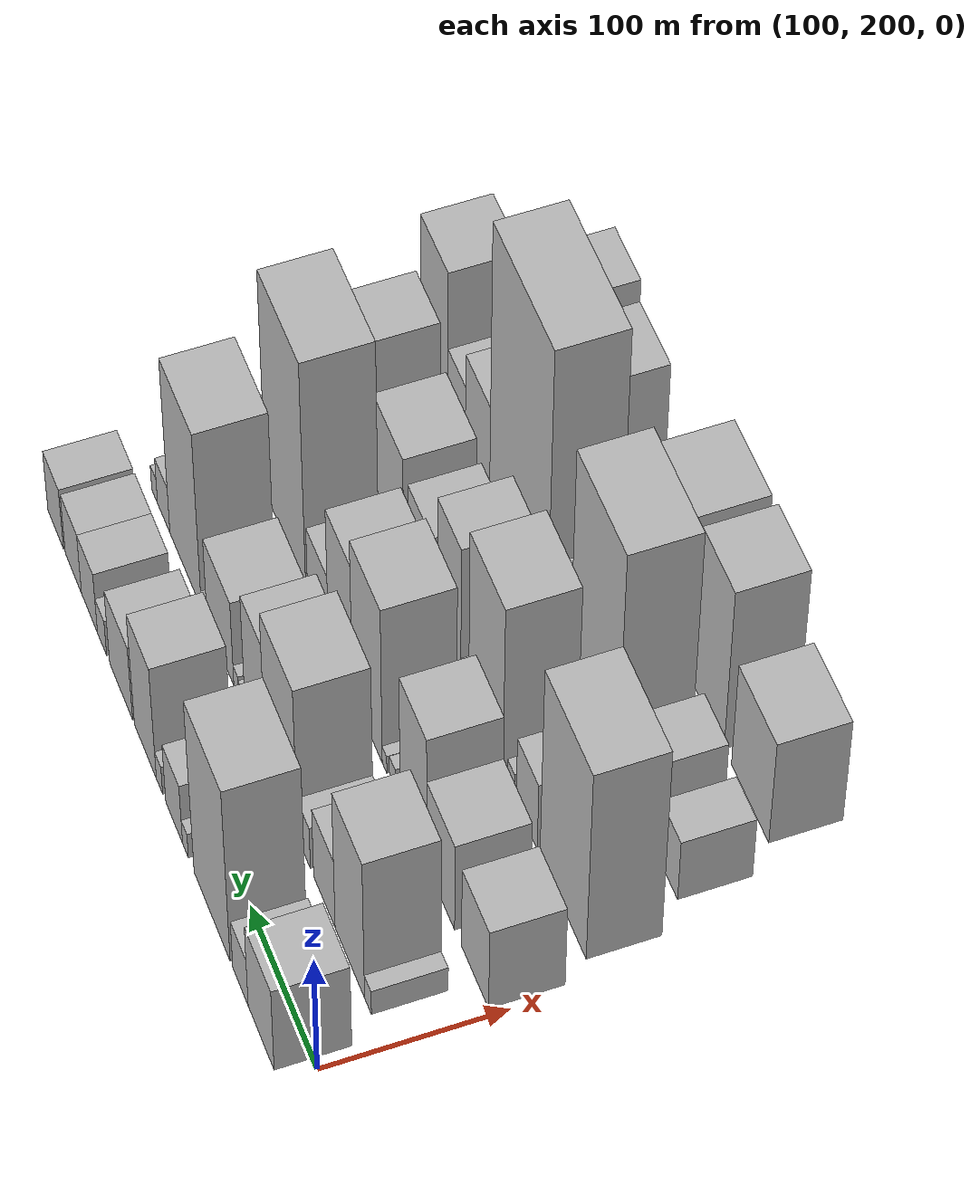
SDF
<sdf version="1.6">
 <world name="default">
  <model name="building_32">
   <static>1</static>
   <pose>100.0000 226.2033 0 0.000000 0.000000 0.000000</pose>
   <link name="link">
    <pose>0 0 36.00 0 0 0</pose>
    <collision name="collision"><geometry><box><size>40.0000 38.8495 72.0000</size></box></geometry></collision>
    <visual name="visual">
     <cast_shadows>0</cast_shadows>
     <geometry><box><size>40.0000 38.8495 72.0000</size></box></geometry>
     <material>
      <script>
       <uri>model://HANNAS_wall/materials/scripts</uri>
       <uri>model://HANNAS_wall/materials/textures</uri>
       <name>vrc/HANNAS_wall</name>
      </script>
     </material>
    </visual>
   </link>
  </model>
  <model name="building_33">
   <static>1</static>
   <pose>100.0000 257.3364 0 0.000000 0.000000 0.000000</pose>
   <link name="link">
    <pose>0 0 21.00 0 0 0</pose>
    <collision name="collision"><geometry><box><size>40.0000 23.4166 42.0000</size></box></geometry></collision>
    <visual name="visual">
     <cast_shadows>0</cast_shadows>
     <geometry><box><size>40.0000 23.4166 42.0000</size></box></geometry>
     <material>
      <script>
       <uri>model://HANNAS_wall/materials/scripts</uri>
       <uri>model://HANNAS_wall/materials/textures</uri>
       <name>vrc/HANNAS_wall</name>
      </script>
     </material>
    </visual>
   </link>
  </model>
  <model name="building_34">
   <static>1</static>
   <pose>100.0000 300.7653 0 0.000000 0.000000 0.000000</pose>
   <link name="link">
    <pose>0 0 75.00 0 0 0</pose>
    <collision name="collision"><geometry><box><size>40.0000 55.4412 150.0000</size></box></geometry></collision>
    <visual name="visual">
     <cast_shadows>0</cast_shadows>
     <geometry><box><size>40.0000 55.4412 150.0000</size></box></geometry>
     <material>
      <script>
       <uri>model://HANNAS_wall/materials/scripts</uri>
       <uri>model://HANNAS_wall/materials/textures</uri>
       <name>vrc/HANNAS_wall</name>
      </script>
     </material>
    </visual>
   </link>
  </model>
  <model name="building_35">
   <static>1</static>
   <pose>100.0000 342.0598 0 0.000000 0.000000 0.000000</pose>
   <link name="link">
    <pose>0 0 10.50 0 0 0</pose>
    <collision name="collision"><geometry><box><size>40.0000 9.1478 21.0000</size></box></geometry></collision>
    <visual name="visual">
     <cast_shadows>0</cast_shadows>
     <geometry><box><size>40.0000 9.1478 21.0000</size></box></geometry>
     <material>
      <script>
       <uri>model://HANNAS_wall/materials/scripts</uri>
       <uri>model://HANNAS_wall/materials/textures</uri>
       <name>vrc/HANNAS_wall</name>
      </script>
     </material>
    </visual>
   </link>
  </model>
  <model name="building_36">
   <static>1</static>
   <pose>100.0000 359.8255 0 0.000000 0.000000 0.000000</pose>
   <link name="link">
    <pose>0 0 25.50 0 0 0</pose>
    <collision name="collision"><geometry><box><size>40.0000 26.3837 51.0000</size></box></geometry></collision>
    <visual name="visual">
     <cast_shadows>0</cast_shadows>
     <geometry><box><size>40.0000 26.3837 51.0000</size></box></geometry>
     <material>
      <script>
       <uri>model://HANNAS_wall/materials/scripts</uri>
       <uri>model://HANNAS_wall/materials/textures</uri>
       <name>vrc/HANNAS_wall</name>
      </script>
     </material>
    </visual>
   </link>
  </model>
  <model name="building_37">
   <static>1</static>
   <pose>100.0000 383.0218 0 0.000000 0.000000 0.000000</pose>
   <link name="link">
    <pose>0 0 12.00 0 0 0</pose>
    <collision name="collision"><geometry><box><size>40.0000 10.0089 24.0000</size></box></geometry></collision>
    <visual name="visual">
     <cast_shadows>0</cast_shadows>
     <geometry><box><size>40.0000 10.0089 24.0000</size></box></geometry>
     <material>
      <script>
       <uri>model://HANNAS_wall/materials/scripts</uri>
       <uri>model://HANNAS_wall/materials/textures</uri>
       <name>vrc/HANNAS_wall</name>
      </script>
     </material>
    </visual>
   </link>
  </model>
  <model name="building_38">
   <static>1</static>
   <pose>100.0000 405.5838 0 0.000000 0.000000 0.000000</pose>
   <link name="link">
    <pose>0 0 48.00 0 0 0</pose>
    <collision name="collision"><geometry><box><size>40.0000 35.1152 96.0000</size></box></geometry></collision>
    <visual name="visual">
     <cast_shadows>0</cast_shadows>
     <geometry><box><size>40.0000 35.1152 96.0000</size></box></geometry>
     <material>
      <script>
       <uri>model://HANNAS_wall/materials/scripts</uri>
       <uri>model://HANNAS_wall/materials/textures</uri>
       <name>vrc/HANNAS_wall</name>
      </script>
     </material>
    </visual>
   </link>
  </model>
  <model name="building_39">
   <static>1</static>
   <pose>100.0000 444.8007 0 0.000000 0.000000 0.000000</pose>
   <link name="link">
    <pose>0 0 31.50 0 0 0</pose>
    <collision name="collision"><geometry><box><size>40.0000 37.3184 63.0000</size></box></geometry></collision>
    <visual name="visual">
     <cast_shadows>0</cast_shadows>
     <geometry><box><size>40.0000 37.3184 63.0000</size></box></geometry>
     <material>
      <script>
       <uri>model://HANNAS_wall/materials/scripts</uri>
       <uri>model://HANNAS_wall/materials/textures</uri>
       <name>vrc/HANNAS_wall</name>
      </script>
     </material>
    </visual>
   </link>
  </model>
  <model name="building_40">
   <static>1</static>
   <pose>100.0000 475.9964 0 0.000000 0.000000 0.000000</pose>
   <link name="link">
    <pose>0 0 15.00 0 0 0</pose>
    <collision name="collision"><geometry><box><size>40.0000 15.0731 30.0000</size></box></geometry></collision>
    <visual name="visual">
     <cast_shadows>0</cast_shadows>
     <geometry><box><size>40.0000 15.0731 30.0000</size></box></geometry>
     <material>
      <script>
       <uri>model://HANNAS_wall/materials/scripts</uri>
       <uri>model://HANNAS_wall/materials/textures</uri>
       <name>vrc/HANNAS_wall</name>
      </script>
     </material>
    </visual>
   </link>
  </model>
  <model name="building_41">
   <static>1</static>
   <pose>100.0000 496.7662 0 0.000000 0.000000 0.000000</pose>
   <link name="link">
    <pose>0 0 25.50 0 0 0</pose>
    <collision name="collision"><geometry><box><size>40.0000 26.4666 51.0000</size></box></geometry></collision>
    <visual name="visual">
     <cast_shadows>0</cast_shadows>
     <geometry><box><size>40.0000 26.4666 51.0000</size></box></geometry>
     <material>
      <script>
       <uri>model://HANNAS_wall/materials/scripts</uri>
       <uri>model://HANNAS_wall/materials/textures</uri>
       <name>vrc/HANNAS_wall</name>
      </script>
     </material>
    </visual>
   </link>
  </model>
  <model name="building_42">
   <static>1</static>
   <pose>100.0000 523.6251 0 0.000000 0.000000 0.000000</pose>
   <link name="link">
    <pose>0 0 25.50 0 0 0</pose>
    <collision name="collision"><geometry><box><size>40.0000 27.2512 51.0000</size></box></geometry></collision>
    <visual name="visual">
     <cast_shadows>0</cast_shadows>
     <geometry><box><size>40.0000 27.2512 51.0000</size></box></geometry>
     <material>
      <script>
       <uri>model://HANNAS_wall/materials/scripts</uri>
       <uri>model://HANNAS_wall/materials/textures</uri>
       <name>vrc/HANNAS_wall</name>
      </script>
     </material>
    </visual>
   </link>
  </model>
  <model name="building_43">
   <static>1</static>
   <pose>100.0000 553.4690 0 0.000000 0.000000 0.000000</pose>
   <link name="link">
    <pose>0 0 25.50 0 0 0</pose>
    <collision name="collision"><geometry><box><size>40.0000 26.4367 51.0000</size></box></geometry></collision>
    <visual name="visual">
     <cast_shadows>0</cast_shadows>
     <geometry><box><size>40.0000 26.4367 51.0000</size></box></geometry>
     <material>
      <script>
       <uri>model://HANNAS_wall/materials/scripts</uri>
       <uri>model://HANNAS_wall/materials/textures</uri>
       <name>vrc/HANNAS_wall</name>
      </script>
     </material>
    </visual>
   </link>
  </model>
  <model name="building_85">
   <static>1</static>
   <pose>155.0000 225.3614 0 0.000000 0.000000 0.000000</pose>
   <link name="link">
    <pose>0 0 10.50 0 0 0</pose>
    <collision name="collision"><geometry><box><size>40.0000 10.0350 21.0000</size></box></geometry></collision>
    <visual name="visual">
     <cast_shadows>0</cast_shadows>
     <geometry><box><size>40.0000 10.0350 21.0000</size></box></geometry>
     <material>
      <script>
       <uri>model://HANNAS_wall/materials/scripts</uri>
       <uri>model://HANNAS_wall/materials/textures</uri>
       <name>vrc/HANNAS_wall</name>
      </script>
     </material>
    </visual>
   </link>
  </model>
  <model name="building_86">
   <static>1</static>
   <pose>155.0000 251.9988 0 0.000000 0.000000 0.000000</pose>
   <link name="link">
    <pose>0 0 60.00 0 0 0</pose>
    <collision name="collision"><geometry><box><size>40.0000 43.2398 120.0000</size></box></geometry></collision>
    <visual name="visual">
     <cast_shadows>0</cast_shadows>
     <geometry><box><size>40.0000 43.2398 120.0000</size></box></geometry>
     <material>
      <script>
       <uri>model://HANNAS_wall/materials/scripts</uri>
       <uri>model://HANNAS_wall/materials/textures</uri>
       <name>vrc/HANNAS_wall</name>
      </script>
     </material>
    </visual>
   </link>
  </model>
  <model name="building_87">
   <static>1</static>
   <pose>155.0000 289.6561 0 0.000000 0.000000 0.000000</pose>
   <link name="link">
    <pose>0 0 30.00 0 0 0</pose>
    <collision name="collision"><geometry><box><size>40.0000 32.0747 60.0000</size></box></geometry></collision>
    <visual name="visual">
     <cast_shadows>0</cast_shadows>
     <geometry><box><size>40.0000 32.0747 60.0000</size></box></geometry>
     <material>
      <script>
       <uri>model://HANNAS_wall/materials/scripts</uri>
       <uri>model://HANNAS_wall/materials/textures</uri>
       <name>vrc/HANNAS_wall</name>
      </script>
     </material>
    </visual>
   </link>
  </model>
  <model name="building_88">
   <static>1</static>
   <pose>155.0000 320.2543 0 0.000000 0.000000 0.000000</pose>
   <link name="link">
    <pose>0 0 18.00 0 0 0</pose>
    <collision name="collision"><geometry><box><size>40.0000 19.1218 36.0000</size></box></geometry></collision>
    <visual name="visual">
     <cast_shadows>0</cast_shadows>
     <geometry><box><size>40.0000 19.1218 36.0000</size></box></geometry>
     <material>
      <script>
       <uri>model://HANNAS_wall/materials/scripts</uri>
       <uri>model://HANNAS_wall/materials/textures</uri>
       <name>vrc/HANNAS_wall</name>
      </script>
     </material>
    </visual>
   </link>
  </model>
  <model name="building_89">
   <static>1</static>
   <pose>155.0000 354.3332 0 0.000000 0.000000 0.000000</pose>
   <link name="link">
    <pose>0 0 64.50 0 0 0</pose>
    <collision name="collision"><geometry><box><size>40.0000 49.0359 129.0000</size></box></geometry></collision>
    <visual name="visual">
     <cast_shadows>0</cast_shadows>
     <geometry><box><size>40.0000 49.0359 129.0000</size></box></geometry>
     <material>
      <script>
       <uri>model://HANNAS_wall/materials/scripts</uri>
       <uri>model://HANNAS_wall/materials/textures</uri>
       <name>vrc/HANNAS_wall</name>
      </script>
     </material>
    </visual>
   </link>
  </model>
  <model name="building_90">
   <static>1</static>
   <pose>155.0000 394.6237 0 0.000000 0.000000 0.000000</pose>
   <link name="link">
    <pose>0 0 51.00 0 0 0</pose>
    <collision name="collision"><geometry><box><size>40.0000 31.5451 102.0000</size></box></geometry></collision>
    <visual name="visual">
     <cast_shadows>0</cast_shadows>
     <geometry><box><size>40.0000 31.5451 102.0000</size></box></geometry>
     <material>
      <script>
       <uri>model://HANNAS_wall/materials/scripts</uri>
       <uri>model://HANNAS_wall/materials/textures</uri>
       <name>vrc/HANNAS_wall</name>
      </script>
     </material>
    </visual>
   </link>
  </model>
  <model name="building_91">
   <static>1</static>
   <pose>155.0000 417.5722 0 0.000000 0.000000 0.000000</pose>
   <link name="link">
    <pose>0 0 7.50 0 0 0</pose>
    <collision name="collision"><geometry><box><size>40.0000 6.3520 15.0000</size></box></geometry></collision>
    <visual name="visual">
     <cast_shadows>0</cast_shadows>
     <geometry><box><size>40.0000 6.3520 15.0000</size></box></geometry>
     <material>
      <script>
       <uri>model://HANNAS_wall/materials/scripts</uri>
       <uri>model://HANNAS_wall/materials/textures</uri>
       <name>vrc/HANNAS_wall</name>
      </script>
     </material>
    </visual>
   </link>
  </model>
  <model name="building_92">
   <static>1</static>
   <pose>155.0000 424.6113 0 0.000000 0.000000 0.000000</pose>
   <link name="link">
    <pose>0 0 9.00 0 0 0</pose>
    <collision name="collision"><geometry><box><size>40.0000 7.7261 18.0000</size></box></geometry></collision>
    <visual name="visual">
     <cast_shadows>0</cast_shadows>
     <geometry><box><size>40.0000 7.7261 18.0000</size></box></geometry>
     <material>
      <script>
       <uri>model://HANNAS_wall/materials/scripts</uri>
       <uri>model://HANNAS_wall/materials/textures</uri>
       <name>vrc/HANNAS_wall</name>
      </script>
     </material>
    </visual>
   </link>
  </model>
  <model name="building_93">
   <static>1</static>
   <pose>155.0000 449.6733 0 0.000000 0.000000 0.000000</pose>
   <link name="link">
    <pose>0 0 36.00 0 0 0</pose>
    <collision name="collision"><geometry><box><size>40.0000 42.3980 72.0000</size></box></geometry></collision>
    <visual name="visual">
     <cast_shadows>0</cast_shadows>
     <geometry><box><size>40.0000 42.3980 72.0000</size></box></geometry>
     <material>
      <script>
       <uri>model://HANNAS_wall/materials/scripts</uri>
       <uri>model://HANNAS_wall/materials/textures</uri>
       <name>vrc/HANNAS_wall</name>
      </script>
     </material>
    </visual>
   </link>
  </model>
  <model name="building_94">
   <static>1</static>
   <pose>155.0000 477.0227 0 0.000000 0.000000 0.000000</pose>
   <link name="link">
    <pose>0 0 7.50 0 0 0</pose>
    <collision name="collision"><geometry><box><size>40.0000 6.3008 15.0000</size></box></geometry></collision>
    <visual name="visual">
     <cast_shadows>0</cast_shadows>
     <geometry><box><size>40.0000 6.3008 15.0000</size></box></geometry>
     <material>
      <script>
       <uri>model://HANNAS_wall/materials/scripts</uri>
       <uri>model://HANNAS_wall/materials/textures</uri>
       <name>vrc/HANNAS_wall</name>
      </script>
     </material>
    </visual>
   </link>
  </model>
  <model name="building_95">
   <static>1</static>
   <pose>155.0000 505.6704 0 0.000000 0.000000 0.000000</pose>
   <link name="link">
    <pose>0 0 73.50 0 0 0</pose>
    <collision name="collision"><geometry><box><size>40.0000 50.9947 147.0000</size></box></geometry></collision>
    <visual name="visual">
     <cast_shadows>0</cast_shadows>
     <geometry><box><size>40.0000 50.9947 147.0000</size></box></geometry>
     <material>
      <script>
       <uri>model://HANNAS_wall/materials/scripts</uri>
       <uri>model://HANNAS_wall/materials/textures</uri>
       <name>vrc/HANNAS_wall</name>
      </script>
     </material>
    </visual>
   </link>
  </model>
  <model name="building_96">
   <static>1</static>
   <pose>155.0000 541.3744 0 0.000000 0.000000 0.000000</pose>
   <link name="link">
    <pose>0 0 19.50 0 0 0</pose>
    <collision name="collision"><geometry><box><size>40.0000 20.4133 39.0000</size></box></geometry></collision>
    <visual name="visual">
     <cast_shadows>0</cast_shadows>
     <geometry><box><size>40.0000 20.4133 39.0000</size></box></geometry>
     <material>
      <script>
       <uri>model://HANNAS_wall/materials/scripts</uri>
       <uri>model://HANNAS_wall/materials/textures</uri>
       <name>vrc/HANNAS_wall</name>
      </script>
     </material>
    </visual>
   </link>
  </model>
  <model name="building_97">
   <static>1</static>
   <pose>155.0000 556.3083 0 0.000000 0.000000 0.000000</pose>
   <link name="link">
    <pose>0 0 10.50 0 0 0</pose>
    <collision name="collision"><geometry><box><size>40.0000 9.4545 21.0000</size></box></geometry></collision>
    <visual name="visual">
     <cast_shadows>0</cast_shadows>
     <geometry><box><size>40.0000 9.4545 21.0000</size></box></geometry>
     <material>
      <script>
       <uri>model://HANNAS_wall/materials/scripts</uri>
       <uri>model://HANNAS_wall/materials/textures</uri>
       <name>vrc/HANNAS_wall</name>
      </script>
     </material>
    </visual>
   </link>
  </model>
  <model name="building_139">
   <static>1</static>
   <pose>210.0000 223.0183 0 0.000000 0.000000 0.000000</pose>
   <link name="link">
    <pose>0 0 34.50 0 0 0</pose>
    <collision name="collision"><geometry><box><size>40.0000 38.3689 69.0000</size></box></geometry></collision>
    <visual name="visual">
     <cast_shadows>0</cast_shadows>
     <geometry><box><size>40.0000 38.3689 69.0000</size></box></geometry>
     <material>
      <script>
       <uri>model://HANNAS_wall/materials/scripts</uri>
       <uri>model://HANNAS_wall/materials/textures</uri>
       <name>vrc/HANNAS_wall</name>
      </script>
     </material>
    </visual>
   </link>
  </model>
  <model name="building_140">
   <static>1</static>
   <pose>210.0000 272.2352 0 0.000000 0.000000 0.000000</pose>
   <link name="link">
    <pose>0 0 37.50 0 0 0</pose>
    <collision name="collision"><geometry><box><size>40.0000 40.0648 75.0000</size></box></geometry></collision>
    <visual name="visual">
     <cast_shadows>0</cast_shadows>
     <geometry><box><size>40.0000 40.0648 75.0000</size></box></geometry>
     <material>
      <script>
       <uri>model://HANNAS_wall/materials/scripts</uri>
       <uri>model://HANNAS_wall/materials/textures</uri>
       <name>vrc/HANNAS_wall</name>
      </script>
     </material>
    </visual>
   </link>
  </model>
  <model name="building_141">
   <static>1</static>
   <pose>210.0000 311.9133 0 0.000000 0.000000 0.000000</pose>
   <link name="link">
    <pose>0 0 55.50 0 0 0</pose>
    <collision name="collision"><geometry><box><size>40.0000 39.2915 111.0000</size></box></geometry></collision>
    <visual name="visual">
     <cast_shadows>0</cast_shadows>
     <geometry><box><size>40.0000 39.2915 111.0000</size></box></geometry>
     <material>
      <script>
       <uri>model://HANNAS_wall/materials/scripts</uri>
       <uri>model://HANNAS_wall/materials/textures</uri>
       <name>vrc/HANNAS_wall</name>
      </script>
     </material>
    </visual>
   </link>
  </model>
  <model name="building_142">
   <static>1</static>
   <pose>210.0000 342.9274 0 0.000000 0.000000 0.000000</pose>
   <link name="link">
    <pose>0 0 10.50 0 0 0</pose>
    <collision name="collision"><geometry><box><size>40.0000 8.7366 21.0000</size></box></geometry></collision>
    <visual name="visual">
     <cast_shadows>0</cast_shadows>
     <geometry><box><size>40.0000 8.7366 21.0000</size></box></geometry>
     <material>
      <script>
       <uri>model://HANNAS_wall/materials/scripts</uri>
       <uri>model://HANNAS_wall/materials/textures</uri>
       <name>vrc/HANNAS_wall</name>
      </script>
     </material>
    </visual>
   </link>
  </model>
  <model name="building_143">
   <static>1</static>
   <pose>210.0000 354.7380 0 0.000000 0.000000 0.000000</pose>
   <link name="link">
    <pose>0 0 7.50 0 0 0</pose>
    <collision name="collision"><geometry><box><size>40.0000 6.8846 15.0000</size></box></geometry></collision>
    <visual name="visual">
     <cast_shadows>0</cast_shadows>
     <geometry><box><size>40.0000 6.8846 15.0000</size></box></geometry>
     <material>
      <script>
       <uri>model://HANNAS_wall/materials/scripts</uri>
       <uri>model://HANNAS_wall/materials/textures</uri>
       <name>vrc/HANNAS_wall</name>
      </script>
     </material>
    </visual>
   </link>
  </model>
  <model name="building_144">
   <static>1</static>
   <pose>210.0000 380.5966 0 0.000000 0.000000 0.000000</pose>
   <link name="link">
    <pose>0 0 66.00 0 0 0</pose>
    <collision name="collision"><geometry><box><size>40.0000 44.8326 132.0000</size></box></geometry></collision>
    <visual name="visual">
     <cast_shadows>0</cast_shadows>
     <geometry><box><size>40.0000 44.8326 132.0000</size></box></geometry>
     <material>
      <script>
       <uri>model://HANNAS_wall/materials/scripts</uri>
       <uri>model://HANNAS_wall/materials/textures</uri>
       <name>vrc/HANNAS_wall</name>
      </script>
     </material>
    </visual>
   </link>
  </model>
  <model name="building_145">
   <static>1</static>
   <pose>210.0000 421.4121 0 0.000000 0.000000 0.000000</pose>
   <link name="link">
    <pose>0 0 55.50 0 0 0</pose>
    <collision name="collision"><geometry><box><size>40.0000 36.7985 111.0000</size></box></geometry></collision>
    <visual name="visual">
     <cast_shadows>0</cast_shadows>
     <geometry><box><size>40.0000 36.7985 111.0000</size></box></geometry>
     <material>
      <script>
       <uri>model://HANNAS_wall/materials/scripts</uri>
       <uri>model://HANNAS_wall/materials/textures</uri>
       <name>vrc/HANNAS_wall</name>
      </script>
     </material>
    </visual>
   </link>
  </model>
  <model name="building_146">
   <static>1</static>
   <pose>210.0000 456.0001 0 0.000000 0.000000 0.000000</pose>
   <link name="link">
    <pose>0 0 27.00 0 0 0</pose>
    <collision name="collision"><geometry><box><size>40.0000 32.3775 54.0000</size></box></geometry></collision>
    <visual name="visual">
     <cast_shadows>0</cast_shadows>
     <geometry><box><size>40.0000 32.3775 54.0000</size></box></geometry>
     <material>
      <script>
       <uri>model://HANNAS_wall/materials/scripts</uri>
       <uri>model://HANNAS_wall/materials/textures</uri>
       <name>vrc/HANNAS_wall</name>
      </script>
     </material>
    </visual>
   </link>
  </model>
  <model name="building_147">
   <static>1</static>
   <pose>210.0000 506.4985 0 0.000000 0.000000 0.000000</pose>
   <link name="link">
    <pose>0 0 93.00 0 0 0</pose>
    <collision name="collision"><geometry><box><size>40.0000 62.6194 186.0000</size></box></geometry></collision>
    <visual name="visual">
     <cast_shadows>0</cast_shadows>
     <geometry><box><size>40.0000 62.6194 186.0000</size></box></geometry>
     <material>
      <script>
       <uri>model://HANNAS_wall/materials/scripts</uri>
       <uri>model://HANNAS_wall/materials/textures</uri>
       <name>vrc/HANNAS_wall</name>
      </script>
     </material>
    </visual>
   </link>
  </model>
  <model name="building_148">
   <static>1</static>
   <pose>210.0000 551.4992 0 0.000000 0.000000 0.000000</pose>
   <link name="link">
    <pose>0 0 24.00 0 0 0</pose>
    <collision name="collision"><geometry><box><size>40.0000 27.3821 48.0000</size></box></geometry></collision>
    <visual name="visual">
     <cast_shadows>0</cast_shadows>
     <geometry><box><size>40.0000 27.3821 48.0000</size></box></geometry>
     <material>
      <script>
       <uri>model://HANNAS_wall/materials/scripts</uri>
       <uri>model://HANNAS_wall/materials/textures</uri>
       <name>vrc/HANNAS_wall</name>
      </script>
     </material>
    </visual>
   </link>
  </model>
  <model name="building_191">
   <static>1</static>
   <pose>265.0000 246.3530 0 0.000000 0.000000 0.000000</pose>
   <link name="link">
    <pose>0 0 81.00 0 0 0</pose>
    <collision name="collision"><geometry><box><size>40.0000 64.4665 162.0000</size></box></geometry></collision>
    <visual name="visual">
     <cast_shadows>0</cast_shadows>
     <geometry><box><size>40.0000 64.4665 162.0000</size></box></geometry>
     <material>
      <script>
       <uri>model://HANNAS_wall/materials/scripts</uri>
       <uri>model://HANNAS_wall/materials/textures</uri>
       <name>vrc/HANNAS_wall</name>
      </script>
     </material>
    </visual>
   </link>
  </model>
  <model name="building_192">
   <static>1</static>
   <pose>265.0000 297.5027 0 0.000000 0.000000 0.000000</pose>
   <link name="link">
    <pose>0 0 28.50 0 0 0</pose>
    <collision name="collision"><geometry><box><size>40.0000 29.8330 57.0000</size></box></geometry></collision>
    <visual name="visual">
     <cast_shadows>0</cast_shadows>
     <geometry><box><size>40.0000 29.8330 57.0000</size></box></geometry>
     <material>
      <script>
       <uri>model://HANNAS_wall/materials/scripts</uri>
       <uri>model://HANNAS_wall/materials/textures</uri>
       <name>vrc/HANNAS_wall</name>
      </script>
     </material>
    </visual>
   </link>
  </model>
  <model name="building_193">
   <static>1</static>
   <pose>265.0000 320.4722 0 0.000000 0.000000 0.000000</pose>
   <link name="link">
    <pose>0 0 10.50 0 0 0</pose>
    <collision name="collision"><geometry><box><size>40.0000 10.1061 21.0000</size></box></geometry></collision>
    <visual name="visual">
     <cast_shadows>0</cast_shadows>
     <geometry><box><size>40.0000 10.1061 21.0000</size></box></geometry>
     <material>
      <script>
       <uri>model://HANNAS_wall/materials/scripts</uri>
       <uri>model://HANNAS_wall/materials/textures</uri>
       <name>vrc/HANNAS_wall</name>
      </script>
     </material>
    </visual>
   </link>
  </model>
  <model name="building_194">
   <static>1</static>
   <pose>265.0000 356.4349 0 0.000000 0.000000 0.000000</pose>
   <link name="link">
    <pose>0 0 70.50 0 0 0</pose>
    <collision name="collision"><geometry><box><size>40.0000 49.8191 141.0000</size></box></geometry></collision>
    <visual name="visual">
     <cast_shadows>0</cast_shadows>
     <geometry><box><size>40.0000 49.8191 141.0000</size></box></geometry>
     <material>
      <script>
       <uri>model://HANNAS_wall/materials/scripts</uri>
       <uri>model://HANNAS_wall/materials/textures</uri>
       <name>vrc/HANNAS_wall</name>
      </script>
     </material>
    </visual>
   </link>
  </model>
  <model name="building_195">
   <static>1</static>
   <pose>265.0000 388.7556 0 0.000000 0.000000 0.000000</pose>
   <link name="link">
    <pose>0 0 9.00 0 0 0</pose>
    <collision name="collision"><geometry><box><size>40.0000 8.8224 18.0000</size></box></geometry></collision>
    <visual name="visual">
     <cast_shadows>0</cast_shadows>
     <geometry><box><size>40.0000 8.8224 18.0000</size></box></geometry>
     <material>
      <script>
       <uri>model://HANNAS_wall/materials/scripts</uri>
       <uri>model://HANNAS_wall/materials/textures</uri>
       <name>vrc/HANNAS_wall</name>
      </script>
     </material>
    </visual>
   </link>
  </model>
  <model name="building_196">
   <static>1</static>
   <pose>265.0000 410.3271 0 0.000000 0.000000 0.000000</pose>
   <link name="link">
    <pose>0 0 55.50 0 0 0</pose>
    <collision name="collision"><geometry><box><size>40.0000 34.3205 111.0000</size></box></geometry></collision>
    <visual name="visual">
     <cast_shadows>0</cast_shadows>
     <geometry><box><size>40.0000 34.3205 111.0000</size></box></geometry>
     <material>
      <script>
       <uri>model://HANNAS_wall/materials/scripts</uri>
       <uri>model://HANNAS_wall/materials/textures</uri>
       <name>vrc/HANNAS_wall</name>
      </script>
     </material>
    </visual>
   </link>
  </model>
  <model name="building_197">
   <static>1</static>
   <pose>265.0000 453.7393 0 0.000000 0.000000 0.000000</pose>
   <link name="link">
    <pose>0 0 33.00 0 0 0</pose>
    <collision name="collision"><geometry><box><size>40.0000 36.5038 66.0000</size></box></geometry></collision>
    <visual name="visual">
     <cast_shadows>0</cast_shadows>
     <geometry><box><size>40.0000 36.5038 66.0000</size></box></geometry>
     <material>
      <script>
       <uri>model://HANNAS_wall/materials/scripts</uri>
       <uri>model://HANNAS_wall/materials/textures</uri>
       <name>vrc/HANNAS_wall</name>
      </script>
     </material>
    </visual>
   </link>
  </model>
  <model name="building_198">
   <static>1</static>
   <pose>265.0000 501.6517 0 0.000000 0.000000 0.000000</pose>
   <link name="link">
    <pose>0 0 39.00 0 0 0</pose>
    <collision name="collision"><geometry><box><size>40.0000 45.3210 78.0000</size></box></geometry></collision>
    <visual name="visual">
     <cast_shadows>0</cast_shadows>
     <geometry><box><size>40.0000 45.3210 78.0000</size></box></geometry>
     <material>
      <script>
       <uri>model://HANNAS_wall/materials/scripts</uri>
       <uri>model://HANNAS_wall/materials/textures</uri>
       <name>vrc/HANNAS_wall</name>
      </script>
     </material>
    </visual>
   </link>
  </model>
  <model name="building_199">
   <static>1</static>
   <pose>265.0000 551.3649 0 0.000000 0.000000 0.000000</pose>
   <link name="link">
    <pose>0 0 54.00 0 0 0</pose>
    <collision name="collision"><geometry><box><size>40.0000 36.1055 108.0000</size></box></geometry></collision>
    <visual name="visual">
     <cast_shadows>0</cast_shadows>
     <geometry><box><size>40.0000 36.1055 108.0000</size></box></geometry>
     <material>
      <script>
       <uri>model://HANNAS_wall/materials/scripts</uri>
       <uri>model://HANNAS_wall/materials/textures</uri>
       <name>vrc/HANNAS_wall</name>
      </script>
     </material>
    </visual>
   </link>
  </model>
  <model name="building_200">
   <static>1</static>
   <pose>265.0000 579.7198 0 0.000000 0.000000 0.000000</pose>
   <link name="link">
    <pose>0 0 19.50 0 0 0</pose>
    <collision name="collision"><geometry><box><size>40.0000 20.6043 39.0000</size></box></geometry></collision>
    <visual name="visual">
     <cast_shadows>0</cast_shadows>
     <geometry><box><size>40.0000 20.6043 39.0000</size></box></geometry>
     <material>
      <script>
       <uri>model://HANNAS_wall/materials/scripts</uri>
       <uri>model://HANNAS_wall/materials/textures</uri>
       <name>vrc/HANNAS_wall</name>
      </script>
     </material>
    </visual>
   </link>
  </model>
  <model name="building_240">
   <static>1</static>
   <pose>320.0000 244.5699 0 0.000000 0.000000 0.000000</pose>
   <link name="link">
    <pose>0 0 25.50 0 0 0</pose>
    <collision name="collision"><geometry><box><size>40.0000 26.9902 51.0000</size></box></geometry></collision>
    <visual name="visual">
     <cast_shadows>0</cast_shadows>
     <geometry><box><size>40.0000 26.9902 51.0000</size></box></geometry>
     <material>
      <script>
       <uri>model://HANNAS_wall/materials/scripts</uri>
       <uri>model://HANNAS_wall/materials/textures</uri>
       <name>vrc/HANNAS_wall</name>
      </script>
     </material>
    </visual>
   </link>
  </model>
  <model name="building_241">
   <static>1</static>
   <pose>320.0000 262.4078 0 0.000000 0.000000 0.000000</pose>
   <link name="link">
    <pose>0 0 10.50 0 0 0</pose>
    <collision name="collision"><geometry><box><size>40.0000 8.6855 21.0000</size></box></geometry></collision>
    <visual name="visual">
     <cast_shadows>0</cast_shadows>
     <geometry><box><size>40.0000 8.6855 21.0000</size></box></geometry>
     <material>
      <script>
       <uri>model://HANNAS_wall/materials/scripts</uri>
       <uri>model://HANNAS_wall/materials/textures</uri>
       <name>vrc/HANNAS_wall</name>
      </script>
     </material>
    </visual>
   </link>
  </model>
  <model name="building_242">
   <static>1</static>
   <pose>320.0000 286.0915 0 0.000000 0.000000 0.000000</pose>
   <link name="link">
    <pose>0 0 31.50 0 0 0</pose>
    <collision name="collision"><geometry><box><size>40.0000 32.6820 63.0000</size></box></geometry></collision>
    <visual name="visual">
     <cast_shadows>0</cast_shadows>
     <geometry><box><size>40.0000 32.6820 63.0000</size></box></geometry>
     <material>
      <script>
       <uri>model://HANNAS_wall/materials/scripts</uri>
       <uri>model://HANNAS_wall/materials/textures</uri>
       <name>vrc/HANNAS_wall</name>
      </script>
     </material>
    </visual>
   </link>
  </model>
  <model name="building_243">
   <static>1</static>
   <pose>320.0000 308.0861 0 0.000000 0.000000 0.000000</pose>
   <link name="link">
    <pose>0 0 12.00 0 0 0</pose>
    <collision name="collision"><geometry><box><size>40.0000 11.3071 24.0000</size></box></geometry></collision>
    <visual name="visual">
     <cast_shadows>0</cast_shadows>
     <geometry><box><size>40.0000 11.3071 24.0000</size></box></geometry>
     <material>
      <script>
       <uri>model://HANNAS_wall/materials/scripts</uri>
       <uri>model://HANNAS_wall/materials/textures</uri>
       <name>vrc/HANNAS_wall</name>
      </script>
     </material>
    </visual>
   </link>
  </model>
  <model name="building_244">
   <static>1</static>
   <pose>320.0000 347.6069 0 0.000000 0.000000 0.000000</pose>
   <link name="link">
    <pose>0 0 91.50 0 0 0</pose>
    <collision name="collision"><geometry><box><size>40.0000 67.7346 183.0000</size></box></geometry></collision>
    <visual name="visual">
     <cast_shadows>0</cast_shadows>
     <geometry><box><size>40.0000 67.7346 183.0000</size></box></geometry>
     <material>
      <script>
       <uri>model://HANNAS_wall/materials/scripts</uri>
       <uri>model://HANNAS_wall/materials/textures</uri>
       <name>vrc/HANNAS_wall</name>
      </script>
     </material>
    </visual>
   </link>
  </model>
  <model name="building_245">
   <static>1</static>
   <pose>320.0000 395.9378 0 0.000000 0.000000 0.000000</pose>
   <link name="link">
    <pose>0 0 25.50 0 0 0</pose>
    <collision name="collision"><geometry><box><size>40.0000 28.9273 51.0000</size></box></geometry></collision>
    <visual name="visual">
     <cast_shadows>0</cast_shadows>
     <geometry><box><size>40.0000 28.9273 51.0000</size></box></geometry>
     <material>
      <script>
       <uri>model://HANNAS_wall/materials/scripts</uri>
       <uri>model://HANNAS_wall/materials/textures</uri>
       <name>vrc/HANNAS_wall</name>
      </script>
     </material>
    </visual>
   </link>
  </model>
  <model name="building_246">
   <static>1</static>
   <pose>320.0000 456.2953 0 0.000000 0.000000 0.000000</pose>
   <link name="link">
    <pose>0 0 111.00 0 0 0</pose>
    <collision name="collision"><geometry><box><size>40.0000 85.7878 222.0000</size></box></geometry></collision>
    <visual name="visual">
     <cast_shadows>0</cast_shadows>
     <geometry><box><size>40.0000 85.7878 222.0000</size></box></geometry>
     <material>
      <script>
       <uri>model://HANNAS_wall/materials/scripts</uri>
       <uri>model://HANNAS_wall/materials/textures</uri>
       <name>vrc/HANNAS_wall</name>
      </script>
     </material>
    </visual>
   </link>
  </model>
  <model name="building_247">
   <static>1</static>
   <pose>320.0000 517.5136 0 0.000000 0.000000 0.000000</pose>
   <link name="link">
    <pose>0 0 36.00 0 0 0</pose>
    <collision name="collision"><geometry><box><size>40.0000 36.6488 72.0000</size></box></geometry></collision>
    <visual name="visual">
     <cast_shadows>0</cast_shadows>
     <geometry><box><size>40.0000 36.6488 72.0000</size></box></geometry>
     <material>
      <script>
       <uri>model://HANNAS_wall/materials/scripts</uri>
       <uri>model://HANNAS_wall/materials/textures</uri>
       <name>vrc/HANNAS_wall</name>
      </script>
     </material>
    </visual>
   </link>
  </model>
  <model name="building_248">
   <static>1</static>
   <pose>320.0000 549.0839 0 0.000000 0.000000 0.000000</pose>
   <link name="link">
    <pose>0 0 22.50 0 0 0</pose>
    <collision name="collision"><geometry><box><size>40.0000 26.4917 45.0000</size></box></geometry></collision>
    <visual name="visual">
     <cast_shadows>0</cast_shadows>
     <geometry><box><size>40.0000 26.4917 45.0000</size></box></geometry>
     <material>
      <script>
       <uri>model://HANNAS_wall/materials/scripts</uri>
       <uri>model://HANNAS_wall/materials/textures</uri>
       <name>vrc/HANNAS_wall</name>
      </script>
     </material>
    </visual>
   </link>
  </model>
  <model name="building_249">
   <static>1</static>
   <pose>320.0000 583.2236 0 0.000000 0.000000 0.000000</pose>
   <link name="link">
    <pose>0 0 54.00 0 0 0</pose>
    <collision name="collision"><geometry><box><size>40.0000 41.7878 108.0000</size></box></geometry></collision>
    <visual name="visual">
     <cast_shadows>0</cast_shadows>
     <geometry><box><size>40.0000 41.7878 108.0000</size></box></geometry>
     <material>
      <script>
       <uri>model://HANNAS_wall/materials/scripts</uri>
       <uri>model://HANNAS_wall/materials/textures</uri>
       <name>vrc/HANNAS_wall</name>
      </script>
     </material>
    </visual>
   </link>
  </model>
  <model name="building_289">
   <static>1</static>
   <pose>375.0000 271.8207 0 0.000000 0.000000 0.000000</pose>
   <link name="link">
    <pose>0 0 43.50 0 0 0</pose>
    <collision name="collision"><geometry><box><size>40.0000 50.2003 87.0000</size></box></geometry></collision>
    <visual name="visual">
     <cast_shadows>0</cast_shadows>
     <geometry><box><size>40.0000 50.2003 87.0000</size></box></geometry>
     <material>
      <script>
       <uri>model://HANNAS_wall/materials/scripts</uri>
       <uri>model://HANNAS_wall/materials/textures</uri>
       <name>vrc/HANNAS_wall</name>
      </script>
     </material>
    </visual>
   </link>
  </model>
  <model name="building_290">
   <static>1</static>
   <pose>375.0000 328.3565 0 0.000000 0.000000 0.000000</pose>
   <link name="link">
    <pose>0 0 67.50 0 0 0</pose>
    <collision name="collision"><geometry><box><size>40.0000 42.8713 135.0000</size></box></geometry></collision>
    <visual name="visual">
     <cast_shadows>0</cast_shadows>
     <geometry><box><size>40.0000 42.8713 135.0000</size></box></geometry>
     <material>
      <script>
       <uri>model://HANNAS_wall/materials/scripts</uri>
       <uri>model://HANNAS_wall/materials/textures</uri>
       <name>vrc/HANNAS_wall</name>
      </script>
     </material>
    </visual>
   </link>
  </model>
  <model name="building_291">
   <static>1</static>
   <pose>375.0000 382.7505 0 0.000000 0.000000 0.000000</pose>
   <link name="link">
    <pose>0 0 66.00 0 0 0</pose>
    <collision name="collision"><geometry><box><size>40.0000 49.9166 132.0000</size></box></geometry></collision>
    <visual name="visual">
     <cast_shadows>0</cast_shadows>
     <geometry><box><size>40.0000 49.9166 132.0000</size></box></geometry>
     <material>
      <script>
       <uri>model://HANNAS_wall/materials/scripts</uri>
       <uri>model://HANNAS_wall/materials/textures</uri>
       <name>vrc/HANNAS_wall</name>
      </script>
     </material>
    </visual>
   </link>
  </model>
  <model name="building_292">
   <static>1</static>
   <pose>375.0000 511.4862 0 0.000000 0.000000 0.000000</pose>
   <link name="link">
    <pose>0 0 39.00 0 0 0</pose>
    <collision name="collision"><geometry><box><size>40.0000 43.8517 78.0000</size></box></geometry></collision>
    <visual name="visual">
     <cast_shadows>0</cast_shadows>
     <geometry><box><size>40.0000 43.8517 78.0000</size></box></geometry>
     <material>
      <script>
       <uri>model://HANNAS_wall/materials/scripts</uri>
       <uri>model://HANNAS_wall/materials/textures</uri>
       <name>vrc/HANNAS_wall</name>
      </script>
     </material>
    </visual>
   </link>
  </model>
  <model name="building_293">
   <static>1</static>
   <pose>375.0000 552.0499 0 0.000000 0.000000 0.000000</pose>
   <link name="link">
    <pose>0 0 48.00 0 0 0</pose>
    <collision name="collision"><geometry><box><size>40.0000 37.2756 96.0000</size></box></geometry></collision>
    <visual name="visual">
     <cast_shadows>0</cast_shadows>
     <geometry><box><size>40.0000 37.2756 96.0000</size></box></geometry>
     <material>
      <script>
       <uri>model://HANNAS_wall/materials/scripts</uri>
       <uri>model://HANNAS_wall/materials/textures</uri>
       <name>vrc/HANNAS_wall</name>
      </script>
     </material>
    </visual>
   </link>
  </model>
 </world>
</sdf>
